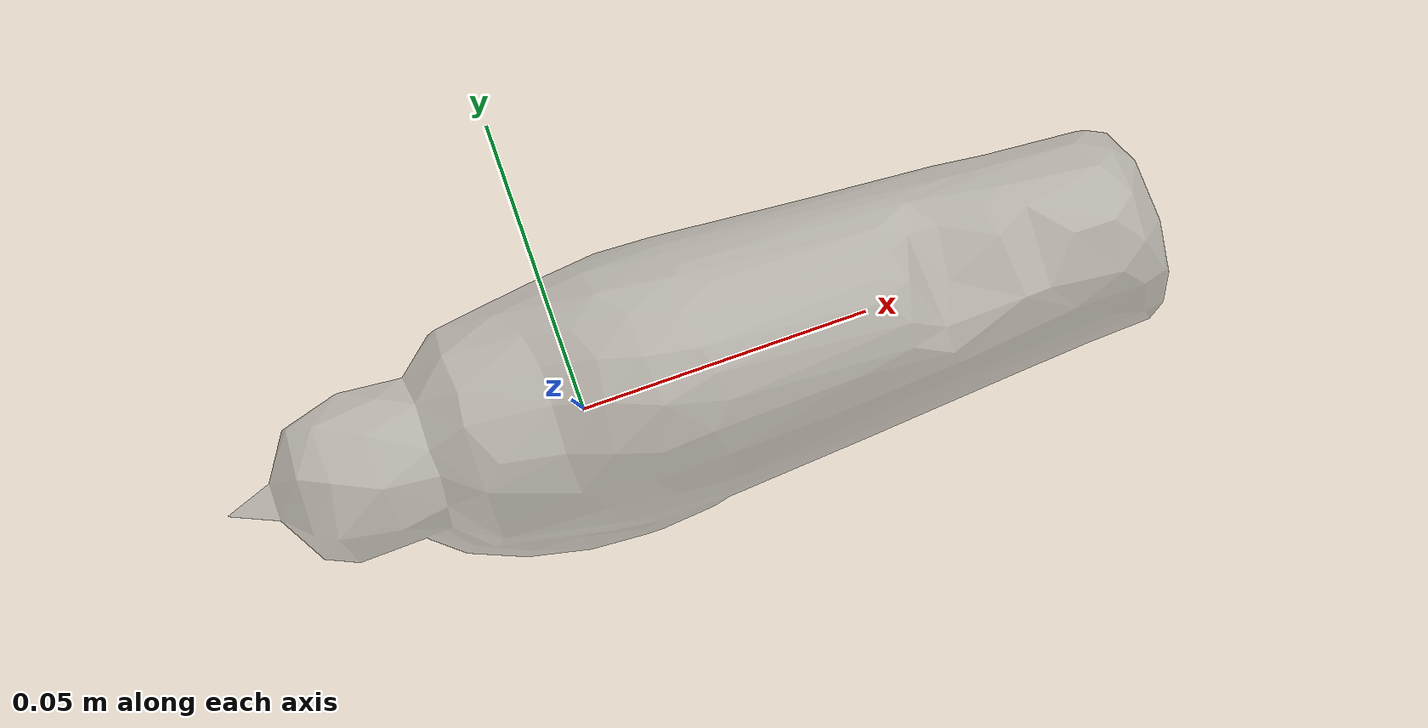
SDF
<?xml version='1.0'?>
<sdf version='1.4'>
  <model name="object">
    <link name='link'>
      <pose>0.0 0 0 0 0 0</pose>
      <inertial>
        <mass>0.969993</mass>
        <inertia>
          <ixx>0.00296829</ixx>
          <ixy>0.00000729</ixy>
          <ixz>-0.00051828</ixz>
          <iyy>0.00373206</iyy>
          <iyz>0.00002625</iyz>
          <izz>0.00094461</izz>
        </inertia>
      </inertial>
      <collision name='c_dp_000'>
        <geometry>
          <mesh>
            <scale>1 1 1</scale>
            <uri>model://drill_poisson_000/mesh/drill_poisson_000.dae</uri>
          </mesh>
        </geometry>
        <surface>
          <contact>
            <ode>
              <kp>100000</kp>
              <kd>100</kd>
              <max_vel>1000.0</max_vel>
            </ode>
          </contact>
        </surface>
      </collision>

      <visual name='v_dp_000'>
        <geometry>
          <mesh>
            <scale>1 1 1</scale>
            <uri>model://drill_poisson_000/mesh/drill_poisson_000.dae</uri>
          </mesh>
        </geometry>
        <material>
          <script>
            <name>Gazebo/GreyTransparent</name>
            <uri>file://media/materials/scripts/gazebo.material</uri>
          </script>
        </material>
      </visual>

      <velocity_decay>
        <linear>0.0004</linear>
        <angular>0.0004</angular>
      </velocity_decay>
    </link>
  </model>
</sdf>
